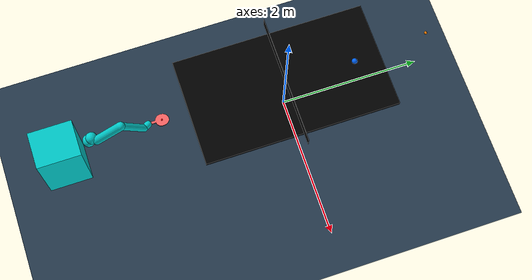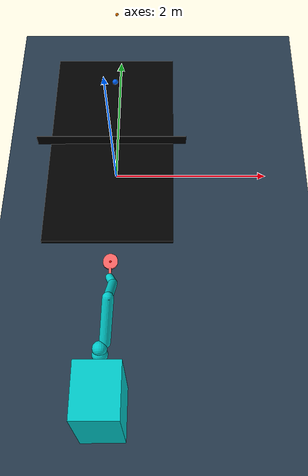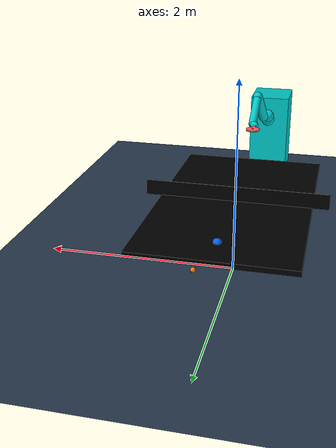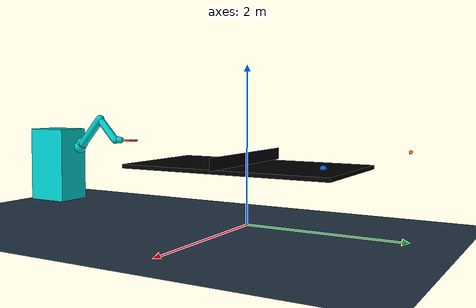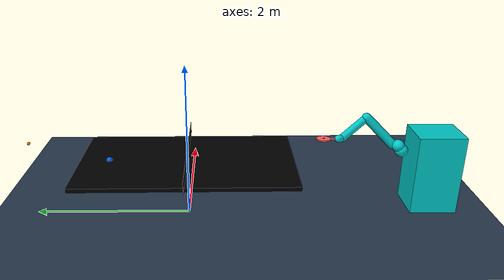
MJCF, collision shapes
<mujoco model="ping-pong-robot">
  <compiler meshdir="." texturedir="."/>
  <statistic extent="1.5" meansize=".05"/>

  <default>
    <pair solref="-35000 -15.75" solimp="0.95 0.99 0.001 0.5 2"/>

    <default class="visual">
      <geom contype="0" conaffinity="0" group="2" rgba=".15 .15 .15 1" type="mesh"/>
    </default>

    <default class="collision">
      <!-- Simplified collision proxies for the arm links.  Enable geom group 3 in the viewer to see them. -->
      <geom contype="4" conaffinity="14" group="3" rgba="0 .8 .8 .35" density="0"/>
    </default>
  </default>

  <option timestep="0.001" jacobian="auto" tolerance="1e-8" gravity="0 0 -9.81"/>

  <visual>
    <global offwidth="1920" offheight="1080" azimuth="90" elevation="-25"/>
    <!-- Camera-attached fill light; the scene's one directional light alone
         left off-facing surfaces (the arm's dark plastic in particular)
         reading as near-black from most viewpoints. -->
    <headlight ambient="0.25 0.25 0.25" diffuse="0.55 0.55 0.55" specular="0.4 0.4 0.4"/>
    <rgba haze="0.15 0.25 0.35 1"/>
    <quality shadowsize="4096"/>
    <map stiffness="700" shadowscale="0.5" fogstart="10" fogend="15" zfar="40" haze="0.3" znear="0.005"/>
  </visual>

  <asset>
    <texture type="skybox" builtin="gradient" rgb1="0.3 0.5 0.7" rgb2="0 0 0" width="512" height="512"/>
    <texture name="texplane" type="2d" builtin="checker" rgb1=".2 .3 .4" rgb2=".1 0.15 0.2" width="512" height="512" mark="cross" markrgb=".8 .8 .8"/>

    <mesh file="table.obj"/>

    <mesh file="arm-base.obj"/>
    <mesh file="rotator.obj"/>
    <mesh file="arm1.obj"/>
    <mesh file="arm2.obj"/>
    <mesh file="paddle-rotator.obj"/>
    <mesh file="paddle.obj"/>

    <material name="matplane" reflectance="0.3" texture="texplane" texrepeat="1 1" texuniform="true"/>
  </asset>

  <worldbody>
    <!-- Lights -->
    <light directional="true" ambient="0.25 0.25 0.25" diffuse="0.8 0.8 0.8" specular="0.2 0.2 0.2" pos="0 0 4" dir="0 0 -1"/>

    <!-- Cameras -->
    <camera name="top_down" pos="0 0 10" euler="0 0 90"/>
    <camera name="render_cam" pos="6.405 -2.284 3.186" xyaxes="0.336 0.942 0.000 -0.400 0.143 0.906"/>

    <!-- Ground -->
    <geom name="ground" type="plane" size="0 0 1" pos="0 0 0" quat="1 0 0 0" material="matplane" condim="1" contype="2" conaffinity="13"/>

    <!-- Table -->
    <body name="table" pos="0 0 0" euler="0 0 0">
      <geom type="mesh" mesh="table" pos="0 0 0.01" euler="0 0 0" contype="0" conaffinity="0" group="2"/>

      <!-- Collision proxies for the play surface and the net -->
      <geom name="table_collider_v" type="box" size="0.9225 0.0025 0.07625" pos="0 0 0.83625" rgba="0 0 0 0" contype="2" conaffinity="13"/>
      <geom name="table_collider_h" type="box" size="0.7625 1.37 0.025" pos="0 0 0.735" rgba="0 0 0 0" contype="2" conaffinity="13"/>
    </body>

    <body name="ball" pos="0 2 1" euler="0 0 0">
      <geom name="ball_geom" type="sphere" size="0.02" rgba="1 0.5 0 1" mass="0.00167" contype="1" conaffinity="10"/>
      <joint type="free" name="ball_free" damping="0.0"/>
    </body>

    <!-- Landing target on the opponent half (moved at runtime) -->
    <site name="target" pos="0 1 0.762" size="0.04" rgba="0 0.4 1 0.9"/>

    <!-- Arm Base -->
    <body name="base" pos="0 -3.255 0.45" euler="0 0 0">
      <joint type="slide" axis="0 1 0" name="base_x" range="-1.8 1.8" damping="2"/>
      <joint type="slide" axis="1 0 0" name="base_y" range="-1.8 1.8" damping="2"/>
      <geom class="visual" mesh="arm-base" pos="0 0.95 0.42" euler="0 0 180" mass="12.5"/>
      <geom class="collision" name="base_collider" type="box" size="0.25 0.298 0.52" pos="0 0.083 0.162"/>

      <!-- Camera -->
      <camera name="follow" pos="0 -2.5 1.5" euler="80 0 0" mode="track"/>

      <!-- Rotator 1 -->
      <body name="rotator1" pos="0 0.5 0.425" euler="0 0 0">
        <joint type="hinge" axis="0 0 1" name="rotator1" damping="0.04" range="-109 155"/>
        <geom class="visual" mesh="rotator" pos="0 0.45 0" euler="0 0 180" mass="0.250"/>
        <geom class="collision" name="rotator1_collider" type="sphere" size="0.085" pos="0 0.01 0"/>

        <!-- Rotator 2 -->
        <body name="rotator2" pos="0 0.055 0.06" euler="-90 0 90">
          <joint type="hinge" axis="0 0 1" name="rotator2" damping="0.04" range="-120 109"/>
          <geom class="visual" mesh="rotator" pos="0 -0.45 0" euler="0 0 0" mass="0.250"/>
          <geom class="collision" name="rotator2_collider" type="sphere" size="0.08" pos="0 0 0"/>

          <!-- Arm 1 -->
          <body name="arm1" pos="0 -0.050 0.061" euler="90 0 45">
            <joint type="hinge" axis="0 0 1" name="arm1" damping="0.04" range="-115 120"/>
            <geom class="visual" mesh="arm1" pos="0 0.335 -0.11" euler="0 0 180" mass="0.550"/>
            <geom class="collision" name="arm1_collider" type="capsule" size="0.06" fromto="0 0 0 0 0.5 0.045"/>

            <!-- Arm 2 -->
            <body name="arm2" pos="0 0.5 0.045" euler="0 0 -90">
              <joint type="hinge" axis="0 0 1" name="arm2" damping="0.04" range="-109 149"/>
              <geom class="visual" mesh="arm2" pos="0 -0.164 -0.155" euler="0 0 180" mass="0.450"/>
              <geom class="collision" name="arm2_collider" type="capsule" size="0.05" fromto="0 0 0 0 0.4 0.015"/>

              <!-- Paddle Rotator -->
              <body name="paddle_rotator" pos="0 0.4 0.015" euler="0 180 -45">
                <joint type="hinge" axis="0 0 1" name="paddle_rotator" damping="0.01" range="-63 246"/>
                <geom class="visual" mesh="paddle-rotator" pos="0 -0.565 0.174" euler="0 0 0" mass="0.1"/>
                <geom class="collision" name="paddle_rotator_collider" type="capsule" size="0.045" fromto="0 0 0 0 0.065 0.035"/>

                <!-- Paddle -->
                <body name="paddle" pos="0 0.065 0.035" euler="-90 0 -90">
                  <joint type="hinge" axis="0 0 1" name="paddle" damping="0.01" range="-120 241"/>
                  <geom name="paddle" type="mesh" mesh="paddle" pos="-0.094 0 0" euler="90 0 0" rgba="1 .4 .4 1" mass="0.150" contype="8" conaffinity="7"/>

                  <!-- The site's local +y axis is the paddle face normal. -->
                  <site name="paddle_site" pos="0 0 0.1855" euler="0 180 0" size="0.015" rgba="1 0 0 1"/>
                </body>
              </body>
            </body>
          </body>
        </body>
      </body>
    </body>
  </worldbody>

  <contact>
    <pair geom1="ball_geom" geom2="table_collider_v"/>
    <pair geom1="ball_geom" geom2="table_collider_h"/>
    <pair geom1="ball_geom" geom2="ground"/>
    <pair geom1="ball_geom" geom2="paddle"/>

    <!--
      Links joined directly to each other would otherwise be in constant
      spurious contact at the shared joint; self-collision is real for
      every other pair.
    -->
    <exclude body1="base" body2="rotator1"/>
    <exclude body1="rotator1" body2="rotator2"/>
    <exclude body1="rotator2" body2="arm1"/>
    <exclude body1="arm1" body2="arm2"/>
    <exclude body1="arm2" body2="paddle_rotator"/>
    <exclude body1="paddle_rotator" body2="paddle"/>

    <exclude body1="rotator1" body2="arm1"/>
  </contact>

  <actuator>
    <motor name="base_x" joint="base_x"/>
    <motor name="base_y" joint="base_y"/>
    <motor name="rotator1" joint="rotator1"/>
    <motor name="rotator2" joint="rotator2"/>
    <motor name="arm1" joint="arm1"/>
    <motor name="arm2" joint="arm2"/>
    <motor name="paddle_rotator" joint="paddle_rotator"/>
    <motor name="paddle" joint="paddle"/>
  </actuator>
</mujoco>
